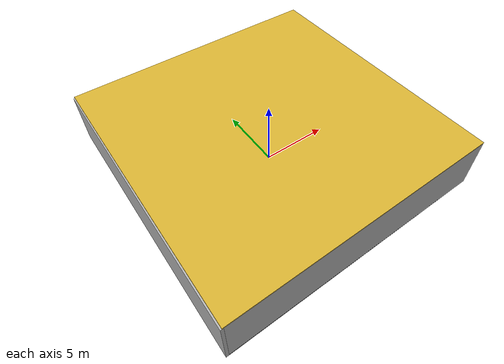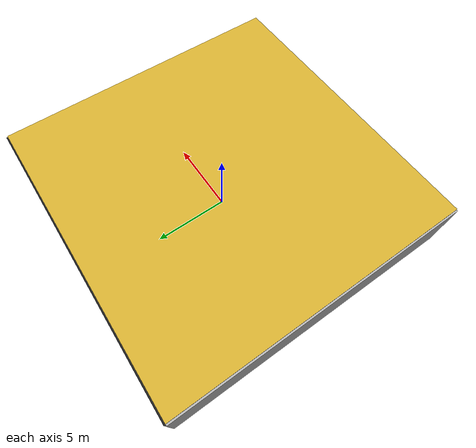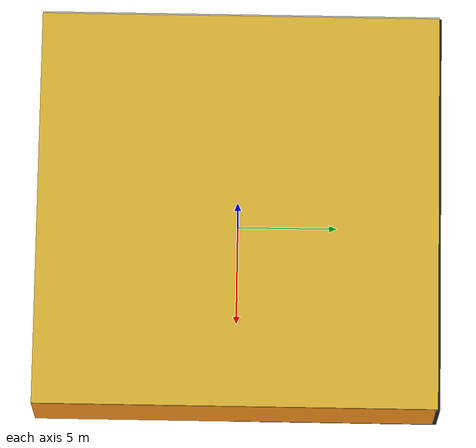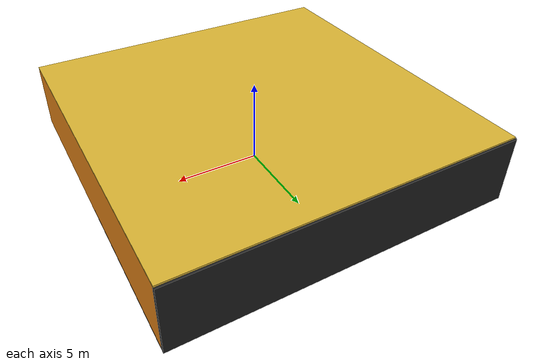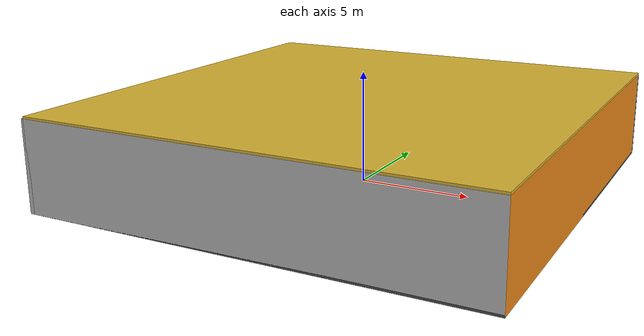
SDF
<sdf version="1.4">
 <world name="default">
  <physics type="ode">
   <max_step_size>0.001</max_step_size>
   <real_time_factor>1</real_time_factor>
   <real_time_update_rate>1000</real_time_update_rate>
   <gravity>0 0 -9.8</gravity>
  </physics>
  <scene><ambient>0.4 0.4 0.4 1</ambient><background>0.7 0.7 0.7 1</background><shadows>1</shadows></scene>
  <model name="Surrounding">
   <static>1</static>
   <link name="Ceiling">
    <collision name="Ceiling_Collision"><geometry><box><size>20 20 0.1</size></box></geometry></collision>
    <visual name="Ceiling_Visual">
     <geometry><box><size>20 20 0.1</size></box></geometry>
     <material>
      <script><uri>file://media/materials/scripts/gazebo.material</uri><name>Gazebo/Gold</name></script>
     </material>
    </visual>
    <pose>0 0 4.05 0 0 0</pose>
   </link>
   <link name="Wall_South">
    <collision name="Wall_South_Collision">
     <geometry><box><size>20 0 4</size></box></geometry>
     <pose>0 0 2 0 -0 0</pose>
    </collision>
    <visual name="Wall_South_Visual">
     <pose>0 0 2 0 -0 0</pose>
     <geometry><box><size>20 0 4</size></box></geometry>
     <material>
      <script><uri>file://media/materials/scripts/gazebo.material</uri><name>Gazebo/LightOn</name></script>
     </material>
    </visual>
    <velocity_decay><linear>0</linear><angular>0</angular></velocity_decay>
    <pose>0 -10 0 0 -0 0</pose>
   </link>
   <link name="Wall_East">
    <collision name="Wall_21_Collision">
     <geometry><box><size>20 0 4</size></box></geometry>
     <pose>0 0 2 0 -0 0</pose>
    </collision>
    <visual name="Wall_21_Visual">
     <pose>0 0 2 0 -0 0</pose>
     <geometry><box><size>20 0 4</size></box></geometry>
     <material>
      <script><uri>file://media/materials/scripts/gazebo.material</uri><name>Gazebo/Orange</name></script>
     </material>
    </visual>
    <velocity_decay><linear>0</linear><angular>0</angular></velocity_decay>
    <pose>10 0 0 0 -0 1.5708</pose>
   </link>
   <link name="Wall_North">
    <collision name="Wall_22_Collision">
     <geometry><box><size>20 0.2 4</size></box></geometry>
     <pose>0 0 2 0 -0 0</pose>
    </collision>
    <visual name="Wall_22_Visual">
     <pose>0 0 2 0 -0 0</pose>
     <geometry><box><size>20 0.2 4</size></box></geometry>
     <material>
      <script><uri>file://media/materials/scripts/gazebo.material</uri><name>Gazebo/FlatBlack</name></script>
     </material>
    </visual>
    <velocity_decay><linear>0</linear><angular>0</angular></velocity_decay>
    <pose>0 10 0 0 -0 0</pose>
   </link>
   <link name="Wall_West">
    <collision name="Wall_23_Collision">
     <geometry><box><size>20 0.2 4</size></box></geometry>
     <pose>0 0 2 0 -0 0</pose>
    </collision>
    <visual name="Wall_23_Visual">
     <pose>0 0 2 0 -0 0</pose>
     <geometry><box><size>20 0.2 4</size></box></geometry>
     <material>
      <script><uri>file://media/materials/scripts/gazebo.material</uri><name>Gazebo/JointAnchor</name></script>
     </material>
    </visual>
    <velocity_decay><linear>0</linear><angular>0</angular></velocity_decay>
    <pose>-10 0 0 0 0 -1.5708</pose>
   </link>
   <link name="Ground_link">
    <collision name="collision">
     <pose>0 0 .05 0 -0 0</pose>
     <geometry><box><size>20 20 0.1</size></box></geometry>
    </collision>
    <visual name="visual">
     <pose>0 0 .05 0 -0 0</pose>
     <geometry><box><size>20 20 0.1</size></box></geometry>
     <material>
      <script><uri>file://media/materials/scripts/gazebo.material</uri><name>Gazebo/Road</name></script>
     </material>
    </visual>
   </link>
   <static>1</static>
  </model>
  <spherical_coordinates>
   <surface_model>EARTH_WGS84</surface_model>
   <latitude_deg>0</latitude_deg>
   <longitude_deg>0</longitude_deg>
   <elevation>0</elevation>
   <heading_deg>0</heading_deg>
  </spherical_coordinates>
  <light name="lightball_0" type="diffuse">
   <diffuse>0.8 0.8 0.8 1</diffuse>
   <specular>0.2 0.2 0.2 1</specular>
   <attenuation>
    <range>100</range>
    <constant>0.7</constant>
    <linear>0.01</linear>
    <quadratic>0.001</quadratic>
   </attenuation>
   <direction>-0.5 0.1 -0.9</direction>
   <pose>-4.92906656036 6.89559134799 3.24752833635 0 0 0</pose>
  </light>
  <light name="lightball_1" type="diffuse">
   <diffuse>0.8 0.8 0.8 1</diffuse>
   <specular>0.2 0.2 0.2 1</specular>
   <attenuation>
    <range>100</range>
    <constant>0.7</constant>
    <linear>0.01</linear>
    <quadratic>0.001</quadratic>
   </attenuation>
   <direction>-0.5 0.1 -0.9</direction>
   <pose>4.47719500687 1.29591918802 1.3996548121 0 0 0</pose>
  </light>
  <light name="lightball_2" type="diffuse">
   <diffuse>0.8 0.8 0.8 1</diffuse>
   <specular>0.2 0.2 0.2 1</specular>
   <attenuation>
    <range>100</range>
    <constant>0.7</constant>
    <linear>0.01</linear>
    <quadratic>0.001</quadratic>
   </attenuation>
   <direction>-0.5 0.1 -0.9</direction>
   <pose>9.76985157947 9.03216970721 3.27432895534 0 0 0</pose>
  </light>
  <include>
   <uri>model://robocup_3Dsim_goal</uri>
   <pose>-6.4961889022 -4.62388035915 0 0 0 2.16008787139</pose>
  </include>
  <include>
   <uri>model://construction_cone</uri>
   <pose>-4.82819874682 -0.403045601925 0 0 0 1.44262346606</pose>
  </include>
  <include><uri>model://cabinet</uri><pose>-2.45099792069 -3.52168781031 0 0 0 0.329610329119</pose></include>
  <include><uri>model://cabinet</uri><pose>2.64945537378 2.28730334118 0 0 0 2.34697078424</pose></include>
 </world>
</sdf>

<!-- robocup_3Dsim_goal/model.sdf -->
<sdf version="1.5">
  <model name="robocup_3d_goal">
    <static>true</static>
    <link name="left_post">
      <pose>0 1.05 0.45 0 0 0</pose>
      <collision name="collision">
        <geometry>
          <cylinder>
            <radius>0.05</radius>
            <length>0.9</length>
          </cylinder>
        </geometry>
      </collision>
      <visual name="visual">
        <geometry>
          <cylinder>
            <radius>0.05</radius>
            <length>0.9</length>
          </cylinder>
        </geometry>
        <material>
          <script>
            <uri>file://media/materials/scripts/gazebo.material</uri>
            <name>Gazebo/ZincYellow</name>
          </script>
        </material>
      </visual>
    </link>
    <link name="left_support_horiz_lower">
      <pose>0.30 1.05 0.01 0 0 0</pose>
      <collision name="collision">
        <geometry>
          <box>
            <size>0.50 0.02 0.02</size>
          </box>
        </geometry>
      </collision>
      <visual name="visual">
        <geometry>
          <box>
            <size>0.50 0.02 0.02</size>
          </box>
        </geometry>
        <material>
          <script>
            <uri>file://media/materials/scripts/gazebo.material</uri>
            <name>Gazebo/White</name>
          </script>
        </material>
      </visual>
    </link>
    <link name="left_support_horiz_upper">
      <pose>0.30 1.05 0.79 0 0 0</pose>
      <collision name="collision">
        <geometry>
          <box>
            <size>0.50 0.02 0.02</size>
          </box>
        </geometry>
      </collision>
      <visual name="visual">
        <geometry>
          <box>
            <size>0.50 0.02 0.02</size>
          </box>
        </geometry>
        <material>
          <script>
            <uri>file://media/materials/scripts/gazebo.material</uri>
            <name>Gazebo/White</name>
          </script>
        </material>
      </visual>
    </link>
    <link name="left_support_vertical">
      <pose>0.56 1.05 0.4 0 1.5708 0</pose>
      <collision name="collision">
        <geometry>
          <box>
            <size>0.80 0.02 0.02</size>
          </box>
        </geometry>
      </collision>
      <visual name="visual">
        <geometry>
          <box>
            <size>0.80 0.02 0.02</size>
          </box>
        </geometry>
        <material>
          <script>
            <uri>file://media/materials/scripts/gazebo.material</uri>
            <name>Gazebo/White</name>
          </script>
        </material>
      </visual>
    </link>
    <link name="right_support_horiz_lower">
      <pose>0.30 -1.05 0.01 0 0 0</pose>
      <collision name="collision">
        <geometry>
          <box>
            <size>0.50 0.02 0.02</size>
          </box>
        </geometry>
      </collision>
      <visual name="visual">
        <geometry>
          <box>
            <size>0.50 0.02 0.02</size>
          </box>
        </geometry>
        <material>
          <script>
            <uri>file://media/materials/scripts/gazebo.material</uri>
            <name>Gazebo/White</name>
          </script>
        </material>
      </visual>
    </link>
    <link name="right_support_horiz_upper">
      <pose>0.30 -1.05 0.79 0 0 0</pose>
      <collision name="collision">
        <geometry>
          <box>
            <size>0.50 0.02 0.02</size>
          </box>
        </geometry>
      </collision>
      <visual name="visual">
        <geometry>
          <box>
            <size>0.50 0.02 0.02</size>
          </box>
        </geometry>
        <material>
          <script>
            <uri>file://media/materials/scripts/gazebo.material</uri>
            <name>Gazebo/White</name>
          </script>
        </material>
      </visual>
    </link>
    <link name="right_support_vertical">
      <pose>0.56 -1.05 0.4 0 1.5708 0</pose>
      <collision name="collision">
        <geometry>
          <box>
            <size>0.80 0.02 0.02</size>
          </box>
        </geometry>
      </collision>
      <visual name="visual">
        <geometry>
          <box>
            <size>0.80 0.02 0.02</size>
          </box>
        </geometry>
        <material>
          <script>
            <uri>file://media/materials/scripts/gazebo.material</uri>
            <name>Gazebo/White</name>
          </script>
        </material>
      </visual>
    </link>
    <link name="center_support_horiz_lower">
      <pose>0.56 0 0.01 0 1.5708 0</pose>
      <collision name="collision">
        <geometry>
          <box>
            <size>0.02 2.08 0.02</size>
          </box>
        </geometry>
      </collision>
      <visual name="visual">
        <geometry>
          <box>
            <size>0.02 2.08 0.02</size>
          </box>
        </geometry>
        <material>
          <script>
            <uri>file://media/materials/scripts/gazebo.material</uri>
            <name>Gazebo/White</name>
          </script>
        </material>
      </visual>
    </link>
    <link name="center_support_horiz_upper">
      <pose>0.56 0 0.79 0 1.5708 0</pose>
      <collision name="collision">
        <geometry>
          <box>
            <size>0.02 2.08 0.02</size>
          </box>
        </geometry>
      </collision>
      <visual name="visual">
        <geometry>
          <box>
            <size>0.02 2.08 0.02</size>
          </box>
        </geometry>
        <material>
          <script>
            <uri>file://media/materials/scripts/gazebo.material</uri>
            <name>Gazebo/White</name>
          </script>
        </material>
      </visual>
    </link>
    <link name="right_post">
      <pose>0 -1.05 0.45 0 0 0</pose>
      <collision name="collision">
        <geometry>
          <cylinder>
            <radius>0.05</radius>
            <length>0.9</length>
          </cylinder>
        </geometry>
      </collision>
      <visual name="visual">
        <geometry>
          <cylinder>
            <radius>0.05</radius>
            <length>0.9</length>
          </cylinder>
        </geometry>
        <material>
          <script>
            <uri>file://media/materials/scripts/gazebo.material</uri>
            <name>Gazebo/ZincYellow</name>
          </script>
        </material>
      </visual>
    </link>
    <link name="crossbar">
      <pose>0 0 0.85 1.57 1.57 0</pose>
      <collision name="collision">
        <geometry>
          <cylinder>
            <radius>0.05</radius>
            <length>2.0</length>
          </cylinder>
        </geometry>
      </collision>
      <visual name="visual">
        <geometry>
          <cylinder>
            <radius>0.05</radius>
            <length>2.0</length>
          </cylinder>
        </geometry>
        <material>
          <script>
            <uri>file://media/materials/scripts/gazebo.material</uri>
            <name>Gazebo/ZincYellow</name>
          </script>
        </material>
      </visual>
    </link>
    <link name="center_net">
      <pose>0.56 0 0.40 0 0 0</pose>
      <collision name="collision">
        <geometry>
          <box>
            <size>0.01 2.1 0.80</size>
          </box>
        </geometry>
      </collision>
      <visual name="visual">
        <geometry>
          <box>
            <size>0.01 2.1 0.80</size>
          </box>
        </geometry>
        <material>
          <script>
            <uri>model://../model_source/models/robocup09_spl_field/materials/scripts/</uri>
            <uri>model://../model_source/models/robocup09_spl_field/materials/textures/</uri>
            <name>RoboCup/Net</name>
          </script>
        </material>
      </visual>
    </link>
    <link name="left_net">
      <pose>0.30 1.05 0.40 0 0 0</pose>
      <collision name="collision">
        <geometry>
          <box>
            <size>0.50 0.01 0.76</size>
          </box>
        </geometry>
      </collision>
      <visual name="visual">
        <geometry>
          <box>
            <size>0.50 0.01 0.76</size>
          </box>
        </geometry>
        <material>
          <script>
            <uri>model://../model_source/models/robocup09_spl_field/materials/scripts/</uri>
            <uri>model://../model_source/models/robocup09_spl_field/materials/textures/</uri>
            <name>RoboCup/Net</name>
          </script>
        </material>
      </visual>
    </link>
    <link name="right_net">
      <pose>0.30 -1.05 0.40 0 0 0</pose>
      <collision name="collision">
        <geometry>
          <box>
            <size>0.50 0.01 0.76</size>
          </box>
        </geometry>
      </collision>
      <visual name="visual">
        <geometry>
          <box>
            <size>0.50 0.01 0.76</size>
          </box>
        </geometry>
        <material>
          <script>
            <uri>model://../model_source/models/robocup09_spl_field/materials/scripts/</uri>
            <uri>model://../model_source/models/robocup09_spl_field/materials/textures/</uri>
            <name>RoboCup/Net</name>
          </script>
        </material>
      </visual>
    </link>
  </model>
</sdf>

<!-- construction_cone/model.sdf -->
<sdf version="1.5">
  <model name="Construction Cone">
    <link name="link">
      <collision name="collision">
        <geometry>
          <mesh>
            <scale>10 10 10</scale>
            <uri>file://isr-testbed/construction_cone/meshes/construction_cone.dae</uri>
          </mesh>
        </geometry>
      </collision>
      <visual name="visual">
        <geometry>
          <mesh>
            <scale>10 10 10</scale>
            <uri>file://isr-testbed/construction_cone/meshes/construction_cone.dae</uri>
          </mesh>
        </geometry>
      </visual>
    </link>
  </model>
</sdf>

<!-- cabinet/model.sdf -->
<sdf version="1.5">
  <model name="cabinet">
    <static>true</static>
    <link name="cabinet_bottom_plate">
      <inertial>
        <pose>0 0 -1 0 0 0</pose>
        <inertia>
          <ixx>2.050000</ixx>
          <ixy>0</ixy>
          <ixz>0</ixz>
          <iyy>2.050000</iyy>
          <iyz>0</iyz>
          <izz>2.050000</izz>
        </inertia>
        <mass>25.000000</mass>
      </inertial>
      <collision name="cabinet_bottom_plate_geom">
        <pose>0 0 0.010000 0 0 0</pose>
        <geometry>
          <box>
            <size>0.450000 0.450000 0.020000</size>
          </box>
        </geometry>
      </collision>
      <visual name="cabinet_bottom_plate_geom_visual">
        <pose>0 0 0.010000 0 0 0</pose>
        <geometry>
          <box>
            <size>0.450000 0.450000 0.020000</size>
          </box>
        </geometry>
        <material>
          <script>
            <uri>model://media/materials/scripts/gazebo.material</uri>
            <name>Gazebo/Wood</name>
          </script>
        </material>
      </visual>
      <collision name="cabinet_bottom_plate_geom_cabinet_back_plate">
        <pose>0.235000 0 0.510000 0 0 0</pose>
        <geometry>
          <box>
            <size>0.020000 0.450000 1.020000</size>
          </box>
        </geometry>
      </collision>
      <visual name="cabinet_bottom_plate_geom_cabinet_back_plate_visual">
        <pose>0.235000 0 0.510000 0 0 0</pose>
        <geometry>
          <box>
            <size>0.020000 0.450000 1.020000</size>
          </box>
        </geometry>
        <material>
          <script>
            <uri>model://media/materials/scripts/gazebo.material</uri>
            <name>Gazebo/Wood</name>
          </script>
        </material>
      </visual>
      <collision name="cabinet_bottom_plate_geom_cabinet_left_plate">
        <pose>0 0.235000 0.510000 0 0 0</pose>
        <geometry>
          <box>
            <size>0.450000 0.020000 1.020000</size>
          </box>
        </geometry>
      </collision>
      <visual name="cabinet_bottom_plate_geom_cabinet_left_plate_visual">
        <pose>0 0.235000 0.510000 0 0 0</pose>
        <geometry>
          <box>
            <size>0.450000 0.020000 1.020000</size>
          </box>
        </geometry>
        <material>
          <script>
            <uri>model://media/materials/scripts/gazebo.material</uri>
            <name>Gazebo/Wood</name>
          </script>
        </material>
      </visual>
      <collision name="cabinet_bottom_plate_geom_cabinet_middle_plate">
        <pose>0 0 0.510000 0 0 0</pose>
        <geometry>
          <box>
            <size>0.450000 0.450000 0.020000</size>
          </box>
        </geometry>
      </collision>
      <visual name="cabinet_bottom_plate_geom_cabinet_middle_plate_visual">
        <pose>0 0 0.510000 0 0 0</pose>
        <geometry>
          <box>
            <size>0.450000 0.450000 0.020000</size>
          </box>
        </geometry>
        <material>
          <script>
            <uri>model://media/materials/scripts/gazebo.material</uri>
            <name>Gazebo/Wood</name>
          </script>
        </material>
      </visual>
      <collision name="cabinet_bottom_plate_geom_cabinet_right_plate">
        <pose>0 -0.235000 0.510000 0 0 0</pose>
        <geometry>
          <box>
            <size>0.450000 0.020000 1.020000</size>
          </box>
        </geometry>
      </collision>
      <visual name="cabinet_bottom_plate_geom_cabinet_right_plate_visual">
        <pose>0 -0.235000 0.510000 0 0 0</pose>
        <geometry>
          <box>
            <size>0.450000 0.020000 1.020000</size>
          </box>
        </geometry>
        <material>
          <script>
            <uri>model://media/materials/scripts/gazebo.material</uri>
            <name>Gazebo/Wood</name>
          </script>
        </material>
      </visual>
      <collision name="cabinet_bottom_plate_geom_cabinet_top_plate">
        <pose>0 0 1.010000 0 0 0</pose>
        <geometry>
          <box>
            <size>0.450000 0.450000 0.020000</size>
          </box>
        </geometry>
      </collision>
      <visual name="cabinet_bottom_plate_geom_cabinet_top_plate_visual">
        <pose>0 0 1.010000 0 0 0</pose>
        <geometry>
          <box>
            <size>0.450000 0.450000 0.020000</size>
          </box>
        </geometry>
        <material>
          <script>
            <uri>model://media/materials/scripts/gazebo.material</uri>
            <name>Gazebo/Wood</name>
          </script>
        </material>
      </visual>
    </link>
  </model>
</sdf>
